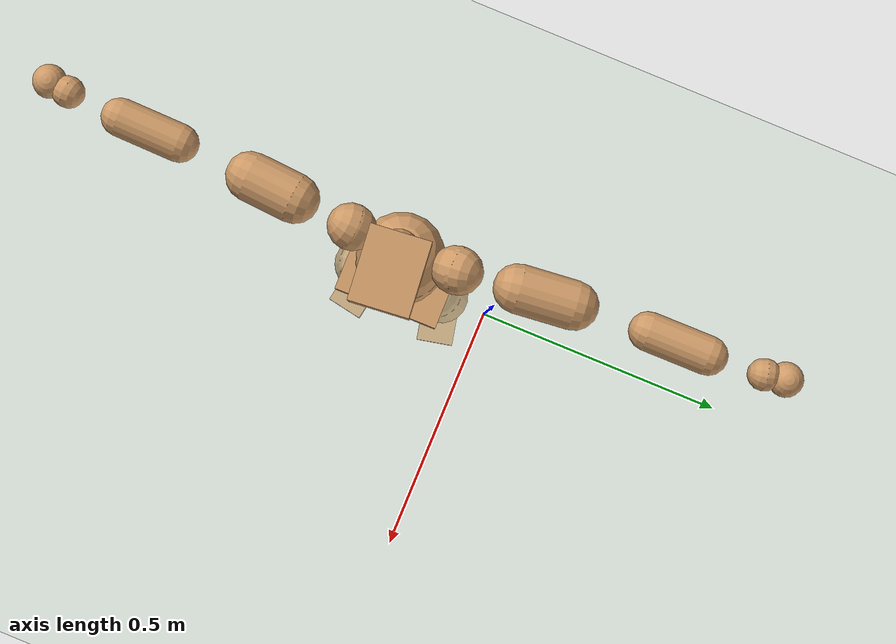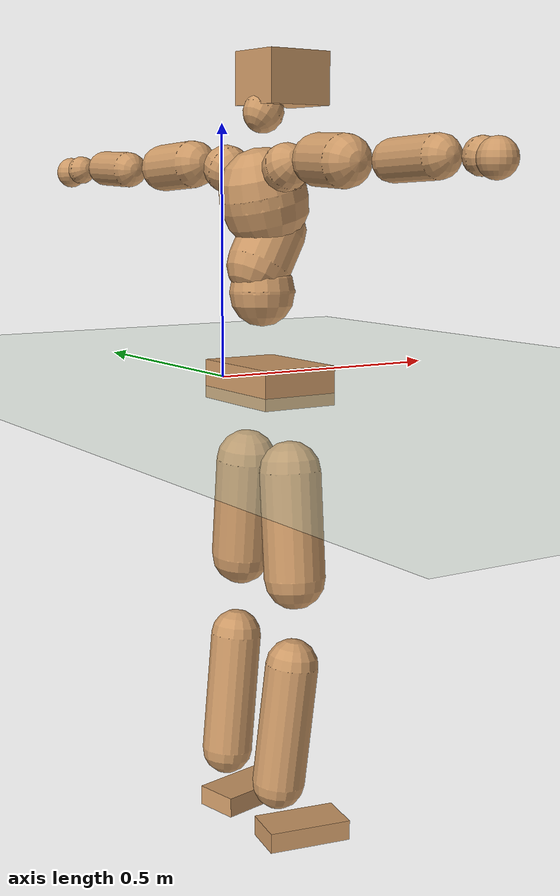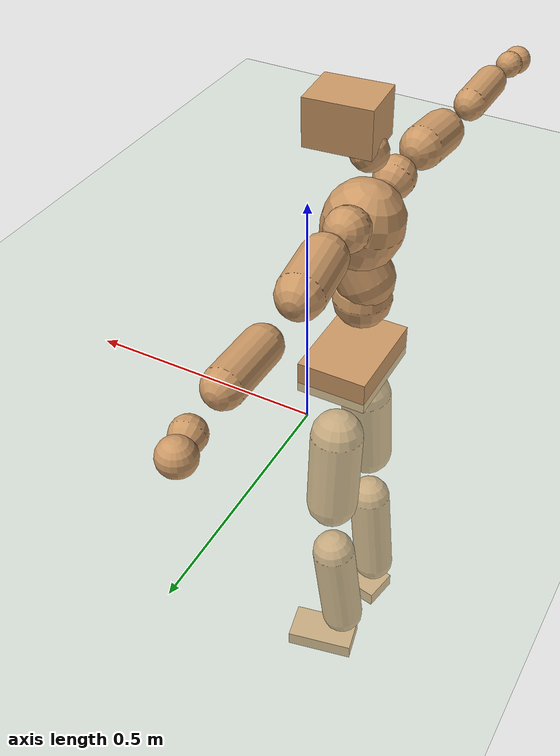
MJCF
<mujoco model="humanoid">
  <compiler coordinate="local" angle="radian"/>
  <default>
    <joint damping="0.0" armature="0.01" stiffness="0.0" limited="true"/>
    <geom conaffinity="1" condim="3" contype="7" margin="0.001" rgba="0.8 0.6 .4 1"/>
  </default>
  <asset>
    <texture type="skybox" builtin="gradient" rgb1=".4 .5 .6" rgb2="0 0 0" width="100" height="100"/>
    <texture builtin="flat" height="1278" mark="cross" markrgb="1 1 1" name="texgeom" random="0.01" rgb1="0.8 0.6 0.4" rgb2="0.8 0.6 0.4" type="cube" width="127"/>
    <texture builtin="checker" height="100" name="texplane" rgb1="0 0 0" rgb2="0.8 0.8 0.8" type="2d" width="100"/>
    <material name="MatPlane" reflectance="0.5" shininess="1" specular="1" texrepeat="60 60" texture="texplane"/>
    <material name="geom" texture="texgeom" texuniform="true"/>
  </asset>
  <worldbody>
    <light cutoff="100" diffuse="1 1 1" dir="-0 0 -1.3" directional="true" exponent="1" pos="0 0 1.3" specular=".1 .1 .1"/>
    <geom conaffinity="1" condim="3" name="floor" pos="0 0 0" rgba="0.8 0.9 0.8 1" size="100 100 .2" type="plane" material="MatPlane"/>
    <body name="Pelvis" pos="-0.0041 -0.189 0.0241">
      <freejoint name="Pelvis"/>
      <geom type="box" contype="1" conaffinity="1" density="5359.374941" pos="-0.0054 -0.0000 -0.0120" size="0.0768 0.1082 0.0372" quat="1.0000 0.0000 0.0000 0.0037" name="Pelvis"/>
      <body name="L_Hip" pos="-0.0082 0.068 -0.0861">
        <joint name="L_Hip_x" type="hinge" pos="0 0 0" axis="1 0 0" stiffness="1600" damping="160" armature="0.02" range="-180.0000 180.0000"/>
        <joint name="L_Hip_y" type="hinge" pos="0 0 0" axis="0 1 0" stiffness="1600" damping="160" armature="0.02" range="-180.0000 180.0000"/>
        <joint name="L_Hip_z" type="hinge" pos="0 0 0" axis="0 0 1" stiffness="1600" damping="160" armature="0.02" range="-180.0000 180.0000"/>
        <geom type="capsule" contype="1" conaffinity="1" density="2040.816327" size="0.0592" fromto="-0.0007 0.0083 -0.0888 -0.0021 0.0266 -0.2849" name="L_Hip"/>
        <body name="L_Knee" pos="-0.0028 0.0348 -0.3737">
          <joint name="L_Knee_x" type="hinge" pos="0 0 0" axis="1 0 0" stiffness="1600" damping="160" armature="0.02" range="-180.0000 180.0000"/>
          <joint name="L_Knee_y" type="hinge" pos="0 0 0" axis="0 1 0" stiffness="1600" damping="160" armature="0.02" range="-180.0000 180.0000"/>
          <joint name="L_Knee_z" type="hinge" pos="0 0 0" axis="0 0 1" stiffness="1600" damping="160" armature="0.02" range="-180.0000 180.0000"/>
          <geom type="capsule" contype="1" conaffinity="1" density="1234.567901" size="0.0506" fromto="-0.0087 -0.0024 -0.0800 -0.0347 -0.0095 -0.3172" name="L_Knee"/>
          <body name="L_Ankle" pos="-0.0434 -0.0119 -0.3973">
            <joint name="L_Ankle_x" type="hinge" pos="0 0 0" axis="1 0 0" stiffness="1600" damping="160" armature="0.02" range="-180.0000 180.0000"/>
            <joint name="L_Ankle_y" type="hinge" pos="0 0 0" axis="0 1 0" stiffness="1600" damping="160" armature="0.02" range="-180.0000 180.0000"/>
            <joint name="L_Ankle_z" type="hinge" pos="0 0 0" axis="0 0 1" stiffness="1600" damping="160" armature="0.02" range="-180.0000 180.0000"/>
            <geom type="box" contype="1" conaffinity="1" density="1000.000009" pos="0.0568 0.0122 -0.0279" size="0.0811 0.0445 0.0199" quat="0.9944 0.0000 0.0000 0.1053" name="L_Ankle"/>
            <body name="L_Toe" pos="0.1137 0.0244 -0.0559">
              <joint name="L_Toe_x" type="hinge" pos="0 0 0" axis="1 0 0" stiffness="1000" damping="100" armature="0.02" range="-180.0000 180.0000"/>
              <joint name="L_Toe_y" type="hinge" pos="0 0 0" axis="0 1 0" stiffness="1000" damping="100" armature="0.02" range="-180.0000 180.0000"/>
              <joint name="L_Toe_z" type="hinge" pos="0 0 0" axis="0 0 1" stiffness="1000" damping="100" armature="0.02" range="-180.0000 180.0000"/>
              <geom type="box" contype="1" conaffinity="1" density="8674153.03264" pos="0.0000 0.0000 0.0277" size="0.0009 0.0022 0.001" quat="0.9937 0.0000 0.0000 0.1118" name="L_Toe"/>
            </body>
          </body>
        </body>
      </body>
      <body name="R_Hip" pos="-0.0044 -0.0665 -0.0857">
        <joint name="R_Hip_x" type="hinge" pos="0 0 0" axis="1 0 0" stiffness="1600" damping="160" armature="0.02" range="-180.0000 180.0000"/>
        <joint name="R_Hip_y" type="hinge" pos="0 0 0" axis="0 1 0" stiffness="1600" damping="160" armature="0.02" range="-180.0000 180.0000"/>
        <joint name="R_Hip_z" type="hinge" pos="0 0 0" axis="0 0 1" stiffness="1600" damping="160" armature="0.02" range="-180.0000 180.0000"/>
        <geom type="capsule" contype="1" conaffinity="1" density="2040.816327" size="0.0584" fromto="-0.0012 -0.0095 -0.0878 -0.0039 -0.0314 -0.2913" name="R_Hip"/>
        <body name="R_Knee" pos="-0.0051 -0.0408 -0.3791">
          <joint name="R_Knee_x" type="hinge" pos="0 0 0" axis="1 0 0" stiffness="1600" damping="160" armature="0.02" range="-180.0000 180.0000"/>
          <joint name="R_Knee_y" type="hinge" pos="0 0 0" axis="0 1 0" stiffness="1600" damping="160" armature="0.02" range="-180.0000 180.0000"/>
          <joint name="R_Knee_z" type="hinge" pos="0 0 0" axis="0 0 1" stiffness="1600" damping="160" armature="0.02" range="-180.0000 180.0000"/>
          <geom type="capsule" contype="1" conaffinity="1" density="1234.567901" size="0.0507" fromto="-0.0083 0.0027 -0.0802 -0.0329 0.0106 -0.3162" name="R_Knee"/>
          <body name="R_Ankle" pos="-0.0412 0.0133 -0.3964">
            <joint name="R_Ankle_x" type="hinge" pos="0 0 0" axis="1 0 0" stiffness="1600" damping="160" armature="0.02" range="-180.0000 180.0000"/>
            <joint name="R_Ankle_y" type="hinge" pos="0 0 0" axis="0 1 0" stiffness="1600" damping="160" armature="0.02" range="-180.0000 180.0000"/>
            <joint name="R_Ankle_z" type="hinge" pos="0 0 0" axis="0 0 1" stiffness="1600" damping="160" armature="0.02" range="-180.0000 180.0000"/>
            <geom type="box" contype="1" conaffinity="1" density="1000.000037" pos="0.0584 -0.0106 -0.0242" size="0.0828 0.0438 0.0196" quat="0.9959 0.0000 0.0000 -0.0901" name="R_Ankle"/>
            <body name="R_Toe" pos="0.1167 -0.0213 -0.0483">
              <joint name="R_Toe_x" type="hinge" pos="0 0 0" axis="1 0 0" stiffness="1000" damping="100" armature="0.02" range="-180.0000 180.0000"/>
              <joint name="R_Toe_y" type="hinge" pos="0 0 0" axis="0 1 0" stiffness="1000" damping="100" armature="0.02" range="-180.0000 180.0000"/>
              <joint name="R_Toe_z" type="hinge" pos="0 0 0" axis="0 0 1" stiffness="1000" damping="100" armature="0.02" range="-180.0000 180.0000"/>
              <geom type="box" contype="1" conaffinity="1" density="8804972.913439" pos="0.0000 0.0000 0.0256" size="0.0009 0.0022 0.001" quat="0.9968 0.0000 0.0000 -0.0805" name="R_Toe"/>
            </body>
          </body>
        </body>
      </body>
      <body name="Torso" pos="-0.0198 -0.0017 0.0999">
        <joint name="Torso_x" type="hinge" pos="0 0 0" axis="1 0 0" stiffness="2000" damping="200" armature="0.02" range="-180.0000 180.0000"/>
        <joint name="Torso_y" type="hinge" pos="0 0 0" axis="0 1 0" stiffness="2000" damping="200" armature="0.02" range="-180.0000 180.0000"/>
        <joint name="Torso_z" type="hinge" pos="0 0 0" axis="0 0 1" stiffness="2000" damping="200" armature="0.02" range="-180.0000 180.0000"/>
        <geom type="capsule" contype="1" conaffinity="1" density="2040.816327" size="0.0622" fromto="-0.0008 0.0019 0.0621 -0.0008 0.0018 0.0568" name="Torso"/>
        <body name="Spine" pos="-0.0016 0.0037 0.1189">
          <joint name="Spine_x" type="hinge" pos="0 0 0" axis="1 0 0" stiffness="2000" damping="200" armature="0.02" range="-180.0000 180.0000"/>
          <joint name="Spine_y" type="hinge" pos="0 0 0" axis="0 1 0" stiffness="2000" damping="200" armature="0.02" range="-180.0000 180.0000"/>
          <joint name="Spine_z" type="hinge" pos="0 0 0" axis="0 0 1" stiffness="2000" damping="200" armature="0.02" range="-180.0000 180.0000"/>
          <geom type="capsule" contype="1" conaffinity="1" density="2040.816327" size="0.0614" fromto="0.0291 0.0025 0.0540 -0.0053 -0.0004 -0.0098" name="Spine"/>
          <body name="Chest" pos="0.0238 0.002 0.0442">
            <joint name="Chest_x" type="hinge" pos="0 0 0" axis="1 0 0" stiffness="2000" damping="200" armature="0.02" range="-180.0000 180.0000"/>
            <joint name="Chest_y" type="hinge" pos="0 0 0" axis="0 1 0" stiffness="2000" damping="200" armature="0.02" range="-180.0000 180.0000"/>
            <joint name="Chest_z" type="hinge" pos="0 0 0" axis="0 0 1" stiffness="2000" damping="200" armature="0.02" range="-180.0000 180.0000"/>
            <geom type="capsule" contype="1" conaffinity="1" density="2040.816327" size="0.0828" fromto="-0.0214 -0.0019 0.0799 -0.0154 -0.0014 0.0578" name="Chest"/>
            <body name="Neck" pos="-0.0438 -0.0075 0.195">
              <joint name="Neck_x" type="hinge" pos="0 0 0" axis="1 0 0" stiffness="1000" damping="100" armature="0.02" range="-180.0000 180.0000"/>
              <joint name="Neck_y" type="hinge" pos="0 0 0" axis="0 1 0" stiffness="1000" damping="100" armature="0.02" range="-180.0000 180.0000"/>
              <joint name="Neck_z" type="hinge" pos="0 0 0" axis="0 0 1" stiffness="1000" damping="100" armature="0.02" range="-180.0000 180.0000"/>
              <geom type="capsule" contype="1" conaffinity="1" density="1000" size="0.0379" fromto="0.0218 0.0011 0.0309 0.0206 0.0010 0.0292" name="Neck"/>
              <body name="Head" pos="0.0425 0.0021 0.0601">
                <joint name="Head_x" type="hinge" pos="0 0 0" axis="1 0 0" stiffness="1000" damping="100" armature="0.02" range="-180.0000 180.0000"/>
                <joint name="Head_y" type="hinge" pos="0 0 0" axis="0 1 0" stiffness="1000" damping="100" armature="0.02" range="-180.0000 180.0000"/>
                <joint name="Head_z" type="hinge" pos="0 0 0" axis="0 0 1" stiffness="1000" damping="100" armature="0.02" range="-180.0000 180.0000"/>
                <geom type="box" contype="1" conaffinity="1" density="2249.999831" pos="0.0222 0.0021 0.0310" size="0.0679 0.0546 0.0486" quat="0.9989 0.0000 0.0000 0.0461" name="Head"/>
              </body>
            </body>
            <body name="L_Thorax" pos="-0.0328 0.0637 0.1085">
              <joint name="L_Thorax_x" type="hinge" pos="0 0 0" axis="1 0 0" stiffness="1000" damping="100" armature="0.02" range="-180.0000 180.0000"/>
              <joint name="L_Thorax_y" type="hinge" pos="0 0 0" axis="0 1 0" stiffness="1000" damping="100" armature="0.02" range="-180.0000 180.0000"/>
              <joint name="L_Thorax_z" type="hinge" pos="0 0 0" axis="0 0 1" stiffness="1000" damping="100" armature="0.02" range="-180.0000 180.0000"/>
              <geom type="capsule" contype="1" conaffinity="1" density="1000" size="0.0446" fromto="-0.0028 0.0415 0.0163 -0.0024 0.0346 0.0136" name="L_Thorax"/>
              <body name="L_Shoulder" pos="-0.0052 0.0761 0.0298">
                <joint name="L_Shoulder_x" type="hinge" pos="0 0 0" axis="1 0 0" stiffness="1000" damping="100" armature="0.02" range="-720.0000 720.0000"/>
                <joint name="L_Shoulder_y" type="hinge" pos="0 0 0" axis="0 1 0" stiffness="1000" damping="100" armature="0.02" range="-720.0000 720.0000"/>
                <joint name="L_Shoulder_z" type="hinge" pos="0 0 0" axis="0 0 1" stiffness="1000" damping="100" armature="0.02" range="-720.0000 720.0000"/>
                <geom type="capsule" contype="1" conaffinity="1" density="1000" size="0.0458" fromto="-0.0079 0.0752 -0.0043 -0.0188 0.1793 -0.0104" name="L_Shoulder"/>
                <body name="L_Elbow" pos="-0.0267 0.2546 -0.0147">
                  <joint name="L_Elbow_x" type="hinge" pos="0 0 0" axis="1 0 0" stiffness="1000" damping="100" armature="0.02" range="-720.0000 720.0000"/>
                  <joint name="L_Elbow_y" type="hinge" pos="0 0 0" axis="0 1 0" stiffness="1000" damping="100" armature="0.02" range="-720.0000 720.0000"/>
                  <joint name="L_Elbow_z" type="hinge" pos="0 0 0" axis="0 0 1" stiffness="1000" damping="100" armature="0.02" range="-720.0000 720.0000"/>
                  <geom type="capsule" contype="1" conaffinity="1" density="1000" size="0.0361" fromto="-0.0002 0.0661 0.0025 -0.0006 0.1816 0.0068" name="L_Elbow"/>
                  <body name="L_Wrist" pos="-0.0008 0.2476 0.0093">
                    <joint name="L_Wrist_x" type="hinge" pos="0 0 0" axis="1 0 0" stiffness="600" damping="60" armature="0.02" range="-180.0000 180.0000"/>
                    <joint name="L_Wrist_y" type="hinge" pos="0 0 0" axis="0 1 0" stiffness="600" damping="60" armature="0.02" range="-180.0000 180.0000"/>
                    <joint name="L_Wrist_z" type="hinge" pos="0 0 0" axis="0 0 1" stiffness="600" damping="60" armature="0.02" range="-180.0000 180.0000"/>
                    <geom type="capsule" contype="1" conaffinity="1" density="1000" size="0.0298" fromto="-0.0066 0.0394 -0.0050 -0.0070 0.0413 -0.0052" name="L_Wrist"/>
                    <body name="L_Hand" pos="-0.0136 0.0807 -0.0102">
                      <joint name="L_Hand_x" type="hinge" pos="0 0 0" axis="1 0 0" stiffness="600" damping="60" armature="0.02" range="-180.0000 180.0000"/>
                      <joint name="L_Hand_y" type="hinge" pos="0 0 0" axis="0 1 0" stiffness="600" damping="60" armature="0.02" range="-180.0000 180.0000"/>
                      <joint name="L_Hand_z" type="hinge" pos="0 0 0" axis="0 0 1" stiffness="600" damping="60" armature="0.02" range="-180.0000 180.0000"/>
                      <geom type="sphere" contype="1" conaffinity="1" density="1000" size="0.0324" pos="0.0000 0.0000 0.0000" name="L_Hand"/>
                    </body>
                  </body>
                </body>
              </body>
            </body>
            <body name="R_Thorax" pos="-0.0337 -0.066 0.1096">
              <joint name="R_Thorax_x" type="hinge" pos="0 0 0" axis="1 0 0" stiffness="1000" damping="100" armature="0.02" range="-180.0000 180.0000"/>
              <joint name="R_Thorax_y" type="hinge" pos="0 0 0" axis="0 1 0" stiffness="1000" damping="100" armature="0.02" range="-180.0000 180.0000"/>
              <joint name="R_Thorax_z" type="hinge" pos="0 0 0" axis="0 0 1" stiffness="1000" damping="100" armature="0.02" range="-180.0000 180.0000"/>
              <geom type="capsule" contype="1" conaffinity="1" density="1000" size="0.043" fromto="-0.0018 -0.0401 0.0154 -0.0016 -0.0355 0.0136" name="R_Thorax"/>
              <body name="R_Shoulder" pos="-0.0033 -0.0755 0.0291">
                <joint name="R_Shoulder_x" type="hinge" pos="0 0 0" axis="1 0 0" stiffness="1000" damping="100" armature="0.02" range="-720.0000 720.0000"/>
                <joint name="R_Shoulder_y" type="hinge" pos="0 0 0" axis="0 1 0" stiffness="1000" damping="100" armature="0.02" range="-720.0000 720.0000"/>
                <joint name="R_Shoulder_z" type="hinge" pos="0 0 0" axis="0 0 1" stiffness="1000" damping="100" armature="0.02" range="-720.0000 720.0000"/>
                <geom type="capsule" contype="1" conaffinity="1" density="1000" size="0.046" fromto="-0.0057 -0.0758 -0.0034 -0.0123 -0.1640 -0.0074" name="R_Shoulder"/>
                <body name="R_Elbow" pos="-0.018 -0.2398 -0.0108">
                  <joint name="R_Elbow_x" type="hinge" pos="0 0 0" axis="1 0 0" stiffness="1000" damping="100" armature="0.02" range="-720.0000 720.0000"/>
                  <joint name="R_Elbow_y" type="hinge" pos="0 0 0" axis="0 1 0" stiffness="1000" damping="100" armature="0.02" range="-720.0000 720.0000"/>
                  <joint name="R_Elbow_z" type="hinge" pos="0 0 0" axis="0 0 1" stiffness="1000" damping="100" armature="0.02" range="-720.0000 720.0000"/>
                  <geom type="capsule" contype="1" conaffinity="1" density="1000" size="0.0353" fromto="-0.0012 -0.0653 0.0022 -0.0034 -0.1812 0.0061" name="R_Elbow"/>
                  <body name="R_Wrist" pos="-0.0046 -0.2465 0.0083">
                    <joint name="R_Wrist_x" type="hinge" pos="0 0 0" axis="1 0 0" stiffness="600" damping="60" armature="0.02" range="-180.0000 180.0000"/>
                    <joint name="R_Wrist_y" type="hinge" pos="0 0 0" axis="0 1 0" stiffness="600" damping="60" armature="0.02" range="-180.0000 180.0000"/>
                    <joint name="R_Wrist_z" type="hinge" pos="0 0 0" axis="0 0 1" stiffness="600" damping="60" armature="0.02" range="-180.0000 180.0000"/>
                    <geom type="capsule" contype="1" conaffinity="1" density="1000" size="0.0294" fromto="-0.0050 -0.0380 -0.0035 -0.0052 -0.0399 -0.0037" name="R_Wrist"/>
                    <body name="R_Hand" pos="-0.0102 -0.0779 -0.0072">
                      <joint name="R_Hand_x" type="hinge" pos="0 0 0" axis="1 0 0" stiffness="600" damping="60" armature="0.02" range="-180.0000 180.0000"/>
                      <joint name="R_Hand_y" type="hinge" pos="0 0 0" axis="0 1 0" stiffness="600" damping="60" armature="0.02" range="-180.0000 180.0000"/>
                      <joint name="R_Hand_z" type="hinge" pos="0 0 0" axis="0 0 1" stiffness="600" damping="60" armature="0.02" range="-180.0000 180.0000"/>
                      <geom type="sphere" contype="1" conaffinity="1" density="1000" size="0.0312" pos="0.0000 0.0000 0.0000" name="R_Hand"/>
                    </body>
                  </body>
                </body>
              </body>
            </body>
          </body>
        </body>
      </body>
    </body>
  </worldbody>
  <actuator>
    <motor name="L_Hip_x" joint="L_Hip_x" gear="500"/>
    <motor name="L_Hip_y" joint="L_Hip_y" gear="500"/>
    <motor name="L_Hip_z" joint="L_Hip_z" gear="500"/>
    <motor name="L_Knee_x" joint="L_Knee_x" gear="500"/>
    <motor name="L_Knee_y" joint="L_Knee_y" gear="500"/>
    <motor name="L_Knee_z" joint="L_Knee_z" gear="500"/>
    <motor name="L_Ankle_x" joint="L_Ankle_x" gear="500"/>
    <motor name="L_Ankle_y" joint="L_Ankle_y" gear="500"/>
    <motor name="L_Ankle_z" joint="L_Ankle_z" gear="500"/>
    <motor name="L_Toe_x" joint="L_Toe_x" gear="500"/>
    <motor name="L_Toe_y" joint="L_Toe_y" gear="500"/>
    <motor name="L_Toe_z" joint="L_Toe_z" gear="500"/>
    <motor name="R_Hip_x" joint="R_Hip_x" gear="500"/>
    <motor name="R_Hip_y" joint="R_Hip_y" gear="500"/>
    <motor name="R_Hip_z" joint="R_Hip_z" gear="500"/>
    <motor name="R_Knee_x" joint="R_Knee_x" gear="500"/>
    <motor name="R_Knee_y" joint="R_Knee_y" gear="500"/>
    <motor name="R_Knee_z" joint="R_Knee_z" gear="500"/>
    <motor name="R_Ankle_x" joint="R_Ankle_x" gear="500"/>
    <motor name="R_Ankle_y" joint="R_Ankle_y" gear="500"/>
    <motor name="R_Ankle_z" joint="R_Ankle_z" gear="500"/>
    <motor name="R_Toe_x" joint="R_Toe_x" gear="500"/>
    <motor name="R_Toe_y" joint="R_Toe_y" gear="500"/>
    <motor name="R_Toe_z" joint="R_Toe_z" gear="500"/>
    <motor name="Torso_x" joint="Torso_x" gear="500"/>
    <motor name="Torso_y" joint="Torso_y" gear="500"/>
    <motor name="Torso_z" joint="Torso_z" gear="500"/>
    <motor name="Spine_x" joint="Spine_x" gear="500"/>
    <motor name="Spine_y" joint="Spine_y" gear="500"/>
    <motor name="Spine_z" joint="Spine_z" gear="500"/>
    <motor name="Chest_x" joint="Chest_x" gear="500"/>
    <motor name="Chest_y" joint="Chest_y" gear="500"/>
    <motor name="Chest_z" joint="Chest_z" gear="500"/>
    <motor name="Neck_x" joint="Neck_x" gear="500"/>
    <motor name="Neck_y" joint="Neck_y" gear="500"/>
    <motor name="Neck_z" joint="Neck_z" gear="500"/>
    <motor name="Head_x" joint="Head_x" gear="500"/>
    <motor name="Head_y" joint="Head_y" gear="500"/>
    <motor name="Head_z" joint="Head_z" gear="500"/>
    <motor name="L_Thorax_x" joint="L_Thorax_x" gear="500"/>
    <motor name="L_Thorax_y" joint="L_Thorax_y" gear="500"/>
    <motor name="L_Thorax_z" joint="L_Thorax_z" gear="500"/>
    <motor name="L_Shoulder_x" joint="L_Shoulder_x" gear="500"/>
    <motor name="L_Shoulder_y" joint="L_Shoulder_y" gear="500"/>
    <motor name="L_Shoulder_z" joint="L_Shoulder_z" gear="500"/>
    <motor name="L_Elbow_x" joint="L_Elbow_x" gear="500"/>
    <motor name="L_Elbow_y" joint="L_Elbow_y" gear="500"/>
    <motor name="L_Elbow_z" joint="L_Elbow_z" gear="500"/>
    <motor name="L_Wrist_x" joint="L_Wrist_x" gear="500"/>
    <motor name="L_Wrist_y" joint="L_Wrist_y" gear="500"/>
    <motor name="L_Wrist_z" joint="L_Wrist_z" gear="500"/>
    <motor name="L_Hand_x" joint="L_Hand_x" gear="500"/>
    <motor name="L_Hand_y" joint="L_Hand_y" gear="500"/>
    <motor name="L_Hand_z" joint="L_Hand_z" gear="500"/>
    <motor name="R_Thorax_x" joint="R_Thorax_x" gear="500"/>
    <motor name="R_Thorax_y" joint="R_Thorax_y" gear="500"/>
    <motor name="R_Thorax_z" joint="R_Thorax_z" gear="500"/>
    <motor name="R_Shoulder_x" joint="R_Shoulder_x" gear="500"/>
    <motor name="R_Shoulder_y" joint="R_Shoulder_y" gear="500"/>
    <motor name="R_Shoulder_z" joint="R_Shoulder_z" gear="500"/>
    <motor name="R_Elbow_x" joint="R_Elbow_x" gear="500"/>
    <motor name="R_Elbow_y" joint="R_Elbow_y" gear="500"/>
    <motor name="R_Elbow_z" joint="R_Elbow_z" gear="500"/>
    <motor name="R_Wrist_x" joint="R_Wrist_x" gear="500"/>
    <motor name="R_Wrist_y" joint="R_Wrist_y" gear="500"/>
    <motor name="R_Wrist_z" joint="R_Wrist_z" gear="500"/>
    <motor name="R_Hand_x" joint="R_Hand_x" gear="500"/>
    <motor name="R_Hand_y" joint="R_Hand_y" gear="500"/>
    <motor name="R_Hand_z" joint="R_Hand_z" gear="500"/>
  </actuator>
  <contact>
    <exclude body1="Torso" body2="Chest"/>
    <exclude body1="Head" body2="Chest"/>
    <exclude body1="R_Knee" body2="R_Toe"/>
    <exclude body1="R_Knee" body2="L_Ankle"/>
    <exclude body1="R_Knee" body2="L_Toe"/>
    <exclude body1="L_Knee" body2="L_Toe"/>
    <exclude body1="L_Knee" body2="R_Ankle"/>
    <exclude body1="L_Knee" body2="R_Toe"/>
    <exclude body1="L_Shoulder" body2="Chest"/>
    <exclude body1="R_Shoulder" body2="Chest"/>
  </contact>
  <sensor/>
  <size njmax="700" nconmax="700"/>
</mujoco>
